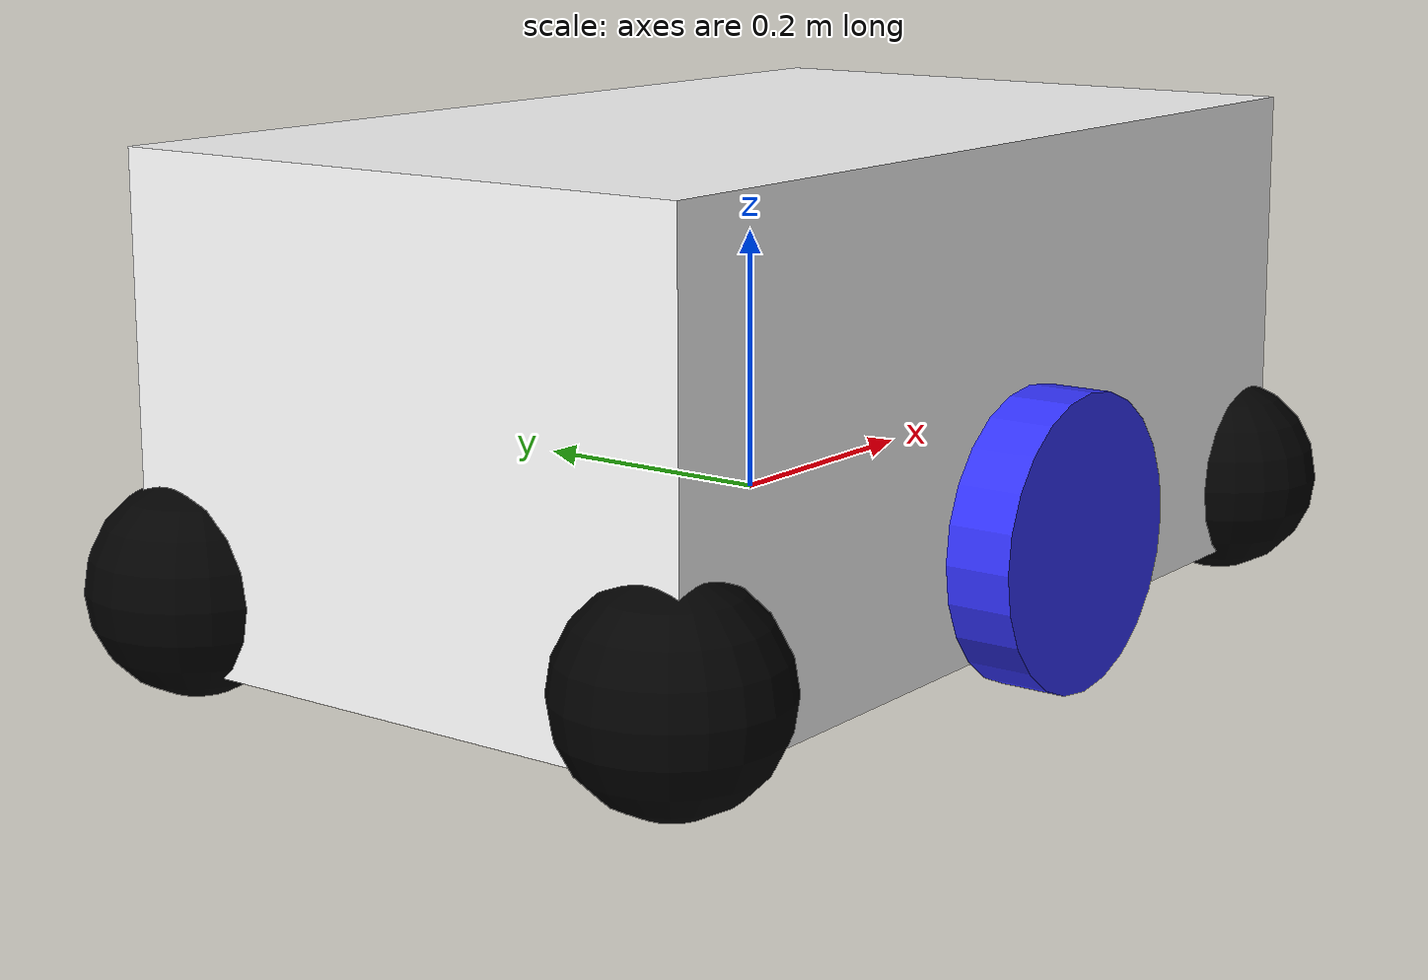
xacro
<?xml version="1.0"?>
<robot xmlns:xacro="http://www.ros.org/wiki/xacro">

    <xacro:include filename="materials.xacro" />

    <link name="base_link">
    </link>

    <joint name="chassis_joint" type="fixed">
        <parent link="base_link"/>
        <child link="chassis"/>
        <origin xyz="0 0 0"/>
    </joint>

    <link name="chassis">
        <visual>
            <origin xyz="0 0 0.1" rpy="0 0 0"/>
            <geometry>
                <box size="0.8 0.48 0.37"/>
            </geometry>
            <material name="white"/>
        </visual>
        <collision>
            <origin xyz="0 0 0.1" rpy="0 0 0"/>
            <geometry>
                <box size="0.8 0.48 0.37"/>
            </geometry>
        </collision>
        <xacro:inertial_box mass="0.5" x="0.8" y="0.48" z="0.37">
            <origin xyz="0 0 0.1" rpy="0 0 0"/>
        </xacro:inertial_box>
    </link>

    <!-- LEFT WHEEL -->

    <joint name="left_wheel_joint" type="continuous">
        <parent link="base_link"/>
        <child link="left_wheel"/>
        <origin xyz="0 0.2738 0" rpy="-${pi/2} 0 0"/>
        <axis xyz="0 0 1"/>
    </joint>

    <link name="left_wheel">
        <visual>
            <geometry>
                <cylinder length="0.05" radius="0.11" />
            </geometry>
            <material name="blue"/>
        </visual>
        <collision>
            <origin xyz="0 0 0" rpy="0 0 0"/>
            <geometry>
                <cylinder length="0.05" radius="0.11" />
            </geometry>
        </collision>
        <xacro:inertial_cylinder mass="0.1" length="0.05" radius="0.11">
            <origin xyz="0 0 0" rpy="0 0 0"/>
        </xacro:inertial_cylinder>
    </link>

    <!-- RIGHT WHEEL -->

    <joint name="right_wheel_joint" type="continuous">
        <parent link="base_link"/>
        <child link="right_wheel"/>
        <origin xyz="0 -0.2738 0" rpy="${pi/2} 0 0"/>
        <axis xyz="0 0 -1"/>
    </joint>

    <link name="right_wheel">
        <visual>
            <geometry>
                <cylinder length="0.05" radius="0.11" />
            </geometry>
            <material name="blue"/>
        </visual>
        <collision>
            <origin xyz="0 0 0" rpy="0 0 0"/>
            <geometry>
                <cylinder length="0.05" radius="0.11" />
            </geometry>
        </collision>
        <xacro:inertial_cylinder mass="0.1" length="0.05" radius="0.11">
            <origin xyz="0 0 0" rpy="0 0 0"/>
        </xacro:inertial_cylinder>
    </link>

    <!-- CASTER WHEELS -->

    <joint name="caster_wheel_joint1" type="continuous">
        <parent link="chassis"/>
        <child link="caster_wheel1"/>
        <origin xyz="0.375 0.215 -0.03" rpy="0 0 0"/>
    </joint>

    <link name="caster_wheel1">
        <visual>
            <geometry>
                <sphere radius="0.08" />
            </geometry>
            <material name="black"/>
        </visual>
        <collision>
            <origin xyz="0 0 0" rpy="0 0 0"/>
            <geometry>
                <sphere radius="0.08" />
            </geometry>
        </collision>
        <xacro:inertial_sphere mass="0.1" radius="0.08">
            <origin xyz="0 0 0" rpy="0 0 0"/>
        </xacro:inertial_sphere>
    </link>

    <joint name="caster_wheel_joint2" type="continuous">
        <parent link="chassis"/>
        <child link="caster_wheel2"/>
        <origin xyz="-0.375 0.215 -0.03" rpy="0 0 0"/>
    </joint>

    <link name="caster_wheel2">
        <visual>
            <geometry>
                <sphere radius="0.08" />
            </geometry>
            <material name="black"/>
        </visual>
        <collision>
            <origin xyz="0 0 0" rpy="0 0 0"/>
            <geometry>
                <sphere radius="0.08" />
            </geometry>
        </collision>
        <xacro:inertial_sphere mass="0.1" radius="0.08">
            <origin xyz="0 0 0" rpy="0 0 0"/>
        </xacro:inertial_sphere>
    </link>

    <joint name="caster_wheel_joint3" type="continuous">
        <parent link="chassis"/>
        <child link="caster_wheel3"/>
        <origin xyz="0.375 -0.215 -0.03" rpy="0 0 0"/>
    </joint>

    <link name="caster_wheel3">
        <visual>
            <geometry>
                <sphere radius="0.08" />
            </geometry>
            <material name="black"/>
        </visual>
        <collision>
            <origin xyz="0 0 0" rpy="0 0 0"/>
            <geometry>
                <sphere radius="0.08" />
            </geometry>
        </collision>
        <xacro:inertial_sphere mass="0.1" radius="0.08">
            <origin xyz="0 0 0" rpy="0 0 0"/>
        </xacro:inertial_sphere>
    </link>

    <joint name="caster_wheel_joint4" type="continuous">
        <parent link="chassis"/>
        <child link="caster_wheel4"/>
        <origin xyz="-0.375 -0.215 -0.03" rpy="0 0 0"/>
    </joint>

    <link name="caster_wheel4">
        <visual>
            <geometry>
                <sphere radius="0.08" />
            </geometry>
            <material name="black"/>
        </visual>
        <collision>
            <origin xyz="0 0 0" rpy="0 0 0"/>
            <geometry>
                <sphere radius="0.08" />
            </geometry>
        </collision>
        <xacro:inertial_sphere mass="0.1" radius="0.08">
            <origin xyz="0 0 0" rpy="0 0 0"/>
        </xacro:inertial_sphere>
    </link>

</robot>

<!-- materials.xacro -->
<robot xmlns:xacro="http://www.ros.org/wiki/xacro" >

    <!-- This file is not a robot in and of itself, it just contains some useful tags that could be included in any robot -->

    <!-- Specify some colours -->

    <material name="white">
        <color rgba="1 1 1 1"/>
    </material>

    <material name="orange">
        <color rgba="1 0.3 0.1 1"/>
    </material>

    <material name="blue">
        <color rgba="0.2 0.2 1 1"/>
    </material>

    <material name="black">
        <color rgba="0.0 0.0 0.0 1.0"/>
    </material>

    <material name="green">
        <color rgba="0.0 1.0 0.0 1.0"/>
    </material>

    <material name="grey">
        <color rgba="0.5 0.5 0.5 1.0"/>
    </material>

    <material name="yallow">
		    <color rgba="1.0 1.0 0.0 1.0"/>
	  </material>

    <material name="brown">
        <color rgba="${222/255} ${207/255} ${195/255} 1.0"/>
    </material>

    <material name="red">
        <color rgba="1.0 0.0 0.0 1.0"/>
    </material>

    <!-- Specify some standard inertial calculations https://en.wikipedia.org/wiki/List_of_moments_of_inertia -->
    <!-- These make use of xacro's mathematical functionality -->

    <xacro:macro name="inertial_sphere" params="mass radius *origin">
        <inertial>
            <xacro:insert_block name="origin"/>
            <mass value="${mass}" />
            <inertia ixx="${(2/5) * mass * (radius*radius)}" ixy="0.0" ixz="0.0"
                    iyy="${(2/5) * mass * (radius*radius)}" iyz="0.0"
                    izz="${(2/5) * mass * (radius*radius)}" />
        </inertial>
    </xacro:macro>

    <xacro:macro name="inertial_box" params="mass x y z *origin">
        <inertial>
            <xacro:insert_block name="origin"/>
            <mass value="${mass}" />
            <inertia ixx="${(1/12) * mass * (y*y+z*z)}" ixy="0.0" ixz="0.0"
                    iyy="${(1/12) * mass * (x*x+z*z)}" iyz="0.0"
                    izz="${(1/12) * mass * (x*x+y*y)}" />
        </inertial>
    </xacro:macro>

    <xacro:macro name="inertial_cylinder" params="mass length radius *origin">
        <inertial>
            <xacro:insert_block name="origin"/>
            <mass value="${mass}" />
            <inertia ixx="${(1/12) * mass * (3*radius*radius + length*length)}" ixy="0.0" ixz="0.0"
                    iyy="${(1/12) * mass * (3*radius*radius + length*length)}" iyz="0.0"
                    izz="${(1/2) * mass * (radius*radius)}" />
        </inertial>
    </xacro:macro>

</robot>
